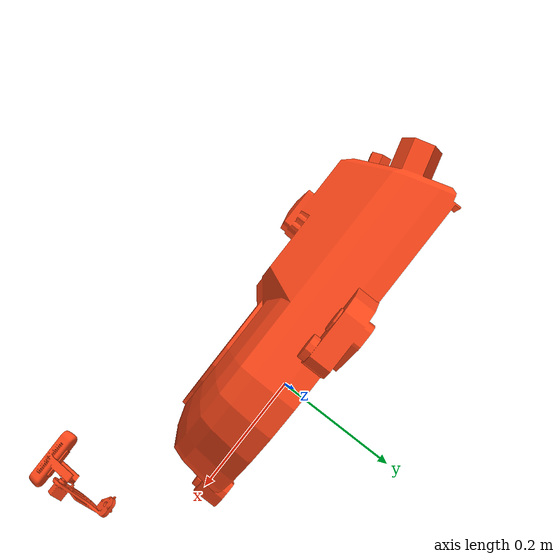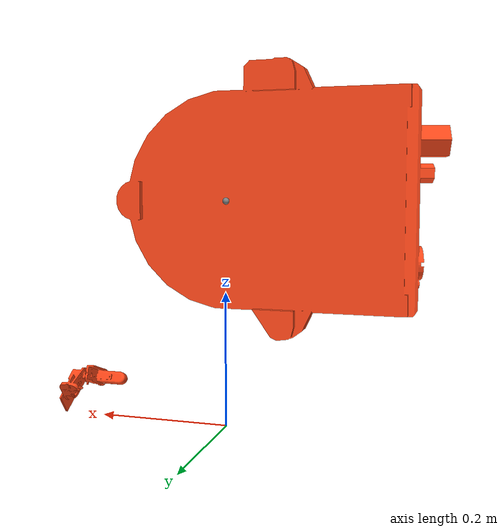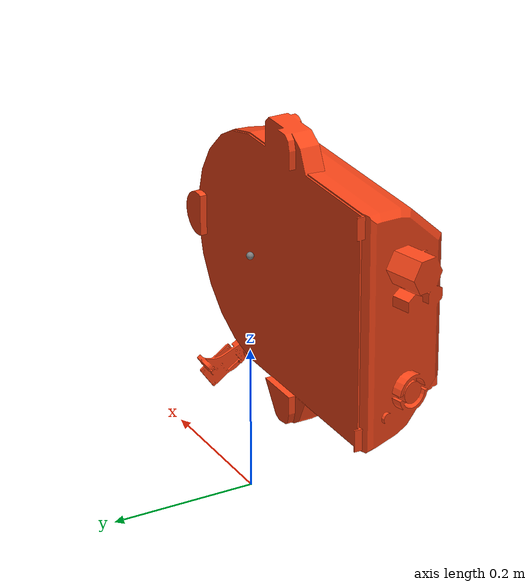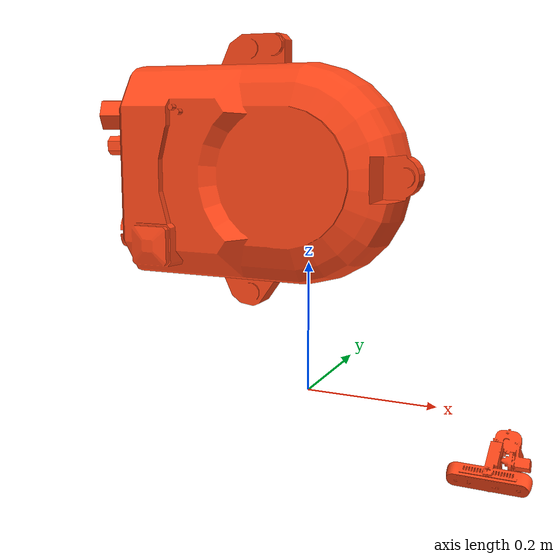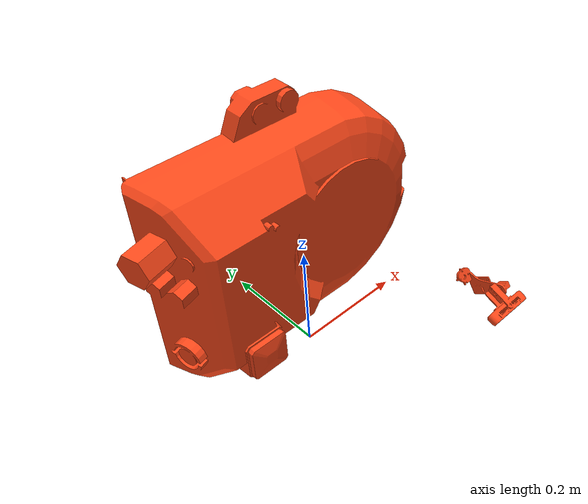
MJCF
<mujoco model="Active_Vision_Platform">
  <default>
    <default class="robot">
      <default class="motor">
        <joint />
        <motor />
      </default>
      <default class="visual">
        <geom material="visualgeom" contype="0" conaffinity="0" group="2" />
      </default>
      <default class="collision">
        <geom material="collision_material" condim="3" contype="0" conaffinity="1" priority="1" group="1" solref="0.005 1" solimp="0.99 0.999 1e-05" friction="1 0.01 0.01" />
      </default>
    </default>
  </default>

  <compiler angle="radian" />

  <asset>
    <material name="" rgba="0.792156862745098 0.819607843137255 0.933333333333333 1" />
    <material name="default_material" rgba="0.7 0.7 0.7 1" />
    <material name="collision_material" rgba="1.0 0.28 0.1 0.9" />
    <mesh name="base_link.STL" file="./meshes/base_link.STL" />
    <mesh name="Empty_Link1.STL" file="./meshes/Empty_Link1.STL" />
    <mesh name="Empty_Link2.STL" file="./meshes/Empty_Link2.STL" />
  </asset>

  <worldbody>
    <body name="base_link" pos="0.00000000 0.00000000 0.33450000" quat="1 0 0 0" childclass="robot">
      <freejoint name="floating_base" />
      <geom name="base_link_collision" pos="0 0 0" quat="1.0 0.0 0.0 0.0" type="mesh" mesh="base_link.STL" class="collision" />
      <geom name="base_link_visual" pos="0 0 0" quat="1.0 0.0 0.0 0.0" material="" type="mesh" mesh="base_link.STL" class="visual" />
      <body name="Empty_Link1" pos="0.31194 -0.10063 -0.3345" quat="-0.32797432617233774 0.6246739242891658 -0.6274251550311 -0.32947382979407475">
        <joint name="joint1" type="hinge" ref="0.0" class="motor" axis="0 0 -1" />
        <inertial pos="0.317477964520347 -0.330969894003123 0.175977174132142" quat="1.0 0.0 0.0 0.0" mass="0.175" diaginertia="0.000583456354562162 0.000640864540576776 0.000161784736864578" />
        <geom name="Empty_Link1_collision" pos="0 0 0" quat="1.0 0.0 0.0 0.0" type="mesh" mesh="Empty_Link1.STL" class="collision" />
        <geom name="Empty_Link1_visual" pos="0 0 0" quat="1.0 0.0 0.0 0.0" material="" type="mesh" mesh="Empty_Link1.STL" class="visual" />
        <body name="Empty_Link2" pos="0.030254 -0.0087565 -0.070686" quat="-0.20276523400275737 -0.20197027798886577 0.6788520501921232 -0.6762057088185948">
          <joint name="joint2" type="hinge" ref="0.0" class="motor" axis="0 0 -1" />
          <inertial pos="0.317477964520347 -0.330969894003123 0.175977174132142" quat="1.0 0.0 0.0 0.0" mass="0.175" diaginertia="0.000583456354562162 0.000640864540576776 0.000161784736864578" />
          <geom name="Empty_Link2_collision" pos="0 0 0" quat="1.0 0.0 0.0 0.0" type="mesh" mesh="Empty_Link2.STL" class="collision" />
          <geom name="Empty_Link2_visual" pos="0 0 0" quat="1.0 0.0 0.0 0.0" material="" type="mesh" mesh="Empty_Link2.STL" class="visual" />
        </body>
      </body>
      <site name="base_link_site" pos="0 0 0" quat="1 0 0 0" />
      <camera name="front_camera" mode="track" fovy="90.0" quat="4.329637285359678e-17 4.329637285359677e-17 0.7071067811865475 0.7071067811865476" pos="0.0 2.0 0.5" />
      <camera name="side_camera" mode="track" fovy="90.0" quat="-0.5 -0.4999999999999999 0.5 0.5000000000000001" pos="-2.0 0.0 0.5" />
    </body>
  </worldbody>

  <actuator>
    <motor name="joint1_ctrl" joint="joint1" class="motor" />
    <motor name="joint2_ctrl" joint="joint2" class="motor" />
  </actuator>

  <contact>
    <exclude body1="base_link" body2="Empty_Link1" />
    <exclude body1="Empty_Link1" body2="Empty_Link2" />
  </contact>

  <sensor>
    <framepos name="base_link_site_pos" objtype="site" objname="base_link_site" />
    <framequat name="base_link_site_quat" objtype="site" objname="base_link_site" />
    <framelinvel name="base_link_site_linvel" objtype="site" objname="base_link_site" />
    <frameangvel name="base_link_site_angvel" objtype="site" objname="base_link_site" />
    <velocimeter name="base_link_site_vel" site="base_link_site" />
  </sensor>
</mujoco>
